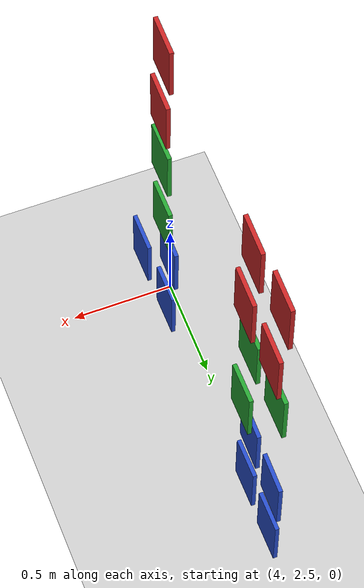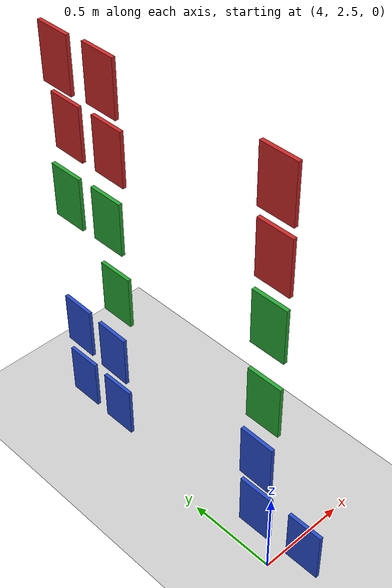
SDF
<sdf version="1.6">
 <world name="default">
  <model name="ground_plane">
   <static>1</static>
   <link name="link">
    <collision name="collision">
     <geometry><plane><normal>0 0 1</normal><size>100 100</size></plane></geometry>
     <surface><friction><ode><mu>100</mu><mu2>50</mu2></ode></friction></surface>
    </collision>
    <visual name="visual">
     <cast_shadows>0</cast_shadows>
     <geometry><plane><normal>0 0 1</normal><size>100 100</size></plane></geometry>
     <material>
      <script><uri>file://media/materials/scripts/gazebo.material</uri><name>Gazebo/Grey</name></script>
     </material>
    </visual>
   </link>
  </model>
  <model name="bluecube_0_clone_clone_9_clone_11_clone">
   <static>1</static>
   <link name="link">
    <pose>0 0 0.21 0 -0 0</pose>
    <collision name="collision"><geometry><box><size>0.2 0.02 0.3</size></box></geometry></collision>
    <visual name="visual">
     <geometry><box><size>0.2 0.02 0.3</size></box></geometry>
     <material>
      <script><uri>file://media/materials/scripts/gazebo.material</uri><name>Gazebo/Blue</name></script>
     </material>
    </visual>
   </link>
   <pose>4.08017 3.96905 0 0 -0 1.57146</pose>
  </model>
  <model name="bluecube_0_clone_clone_9_clone_11_clone_clone_0">
   <static>1</static>
   <link name="link">
    <pose>0 0 0.21 0 -0 0</pose>
    <collision name="collision"><geometry><box><size>0.2 0.02 0.3</size></box></geometry></collision>
    <visual name="visual">
     <geometry><box><size>0.2 0.02 0.3</size></box></geometry>
     <material>
      <script><uri>file://media/materials/scripts/gazebo.material</uri><name>Gazebo/Blue</name></script>
     </material>
    </visual>
   </link>
   <pose>4.08828 2.67294 0 0 -0 1.57146</pose>
  </model>
  <model name="bluecube_0_clone_clone_9_clone_11_clone_clone_1">
   <static>1</static>
   <link name="link">
    <pose>0 0 0.21 0 -0 0</pose>
    <collision name="collision"><geometry><box><size>0.2 0.02 0.3</size></box></geometry></collision>
    <visual name="visual">
     <geometry><box><size>0.2 0.02 0.3</size></box></geometry>
     <material>
      <script><uri>file://media/materials/scripts/gazebo.material</uri><name>Gazebo/Blue</name></script>
     </material>
    </visual>
   </link>
   <pose>4.0927 2.36032 0 0 -0 1.57146</pose>
  </model>
  <model name="bluecube_0_clone_clone_10_clone_clone_21_clone">
   <static>1</static>
   <link name="link">
    <pose>0 0 0.21 0 -0 0</pose>
    <collision name="collision"><geometry><box><size>0.2 0.02 0.3</size></box></geometry></collision>
    <visual name="visual">
     <geometry><box><size>0.2 0.02 0.3</size></box></geometry>
     <material>
      <script><uri>file://media/materials/scripts/gazebo.material</uri><name>Gazebo/Blue</name></script>
     </material>
    </visual>
   </link>
   <pose>4.07606 3.96812 0.38097 0 -0 1.5507</pose>
  </model>
  <model name="bluecube_0_clone_clone_9_clone_11_clone_clone_21">
   <static>1</static>
   <link name="link">
    <pose>0 0 0.21 0 -0 0</pose>
    <collision name="collision"><geometry><box><size>0.2 0.02 0.3</size></box></geometry></collision>
    <visual name="visual">
     <geometry><box><size>0.2 0.02 0.3</size></box></geometry>
     <material>
      <script><uri>file://media/materials/scripts/gazebo.material</uri><name>Gazebo/Blue</name></script>
     </material>
    </visual>
   </link>
   <pose>4.07424 3.68188 0 0 -0 1.57146</pose>
  </model>
  <model name="bluecube_0_clone_clone_10_clone_clone_21_clone_clone_0">
   <static>1</static>
   <link name="link">
    <pose>0 0 0.21 0 -0 0</pose>
    <collision name="collision"><geometry><box><size>0.2 0.02 0.3</size></box></geometry></collision>
    <visual name="visual">
     <geometry><box><size>0.2 0.02 0.3</size></box></geometry>
     <material>
      <script><uri>file://media/materials/scripts/gazebo.material</uri><name>Gazebo/Blue</name></script>
     </material>
    </visual>
   </link>
   <pose>4.06461 3.68448 0.38097 0 -0 1.5507</pose>
  </model>
  <model name="bluecube_0_clone_clone_10_clone_clone_21_clone_clone_1">
   <static>1</static>
   <link name="link">
    <pose>0 0 0.21 0 -0 0</pose>
    <collision name="collision"><geometry><box><size>0.2 0.02 0.3</size></box></geometry></collision>
    <visual name="visual">
     <geometry><box><size>0.2 0.02 0.3</size></box></geometry>
     <material>
      <script><uri>file://media/materials/scripts/gazebo.material</uri><name>Gazebo/Blue</name></script>
     </material>
    </visual>
   </link>
   <pose>4.07067 2.66646 0.38097 0 -0 1.5507</pose>
  </model>
  <model name="greencube_clone_clone_22_clone_clone">
   <static>1</static>
   <link name="link">
    <pose>0 0 0.21 0 -0 0</pose>
    <collision name="collision"><geometry><box><size>0.2 0.02 0.3</size></box></geometry></collision>
    <visual name="visual">
     <geometry><box><size>0.2 0.02 0.3</size></box></geometry>
     <material>
      <script><uri>file://media/materials/scripts/gazebo.material</uri><name>Gazebo/Green</name></script>
     </material>
    </visual>
   </link>
   <pose>4.11581 3.68432 0.751098 0 -0 1.56837</pose>
  </model>
  <model name="greencube_clone_clone_22_clone_clone_1">
   <static>1</static>
   <link name="link">
    <pose>0 0 0.21 0 -0 0</pose>
    <collision name="collision"><geometry><box><size>0.2 0.02 0.3</size></box></geometry></collision>
    <visual name="visual">
     <geometry><box><size>0.2 0.02 0.3</size></box></geometry>
     <material>
      <script><uri>file://media/materials/scripts/gazebo.material</uri><name>Gazebo/Green</name></script>
     </material>
    </visual>
   </link>
   <pose>4.10289 2.66656 0.751098 0 -0 1.56837</pose>
  </model>
  <model name="greencube_clone_clone_22_clone_clone_10_clone_clone_clone_11">
   <static>1</static>
   <link name="link">
    <pose>0 0 0.21 0 -0 0</pose>
    <collision name="collision"><geometry><box><size>0.2 0.02 0.3</size></box></geometry></collision>
    <visual name="visual">
     <geometry><box><size>0.2 0.02 0.3</size></box></geometry>
     <material>
      <script><uri>file://media/materials/scripts/gazebo.material</uri><name>Gazebo/Green</name></script>
     </material>
    </visual>
   </link>
   <pose>4.08711 3.97171 1.21098 0 -0 1.56837</pose>
  </model>
  <model name="greencube_clone_clone_22_clone_clone_10_clone_clone_clone_12">
   <static>1</static>
   <link name="link">
    <pose>0 0 0.21 0 -0 0</pose>
    <collision name="collision"><geometry><box><size>0.2 0.02 0.3</size></box></geometry></collision>
    <visual name="visual">
     <geometry><box><size>0.2 0.02 0.3</size></box></geometry>
     <material>
      <script><uri>file://media/materials/scripts/gazebo.material</uri><name>Gazebo/Green</name></script>
     </material>
    </visual>
   </link>
   <pose>4.09341 3.69107 1.21098 0 -0 1.56837</pose>
  </model>
  <model name="greencube_clone_clone_22_clone_clone_10_clone_clone_clone_13">
   <static>1</static>
   <link name="link">
    <pose>0 0 0.21 0 -0 0</pose>
    <collision name="collision"><geometry><box><size>0.2 0.02 0.3</size></box></geometry></collision>
    <visual name="visual">
     <geometry><box><size>0.2 0.02 0.3</size></box></geometry>
     <material>
      <script><uri>file://media/materials/scripts/gazebo.material</uri><name>Gazebo/Green</name></script>
     </material>
    </visual>
   </link>
   <pose>4.10701 2.66235 1.21098 0 -0 1.56837</pose>
  </model>
  <model name="redcube_clone_clone_22_clone_clone_11">
   <static>1</static>
   <link name="link">
    <pose>0 0 0.21 0 -0 0</pose>
    <collision name="collision"><geometry><box><size>0.2 0.02 0.3</size></box></geometry></collision>
    <visual name="visual">
     <geometry><box><size>0.2 0.02 0.3</size></box></geometry>
     <material>
      <script><uri>file://media/materials/scripts/gazebo.material</uri><name>Gazebo/Red</name></script>
     </material>
    </visual>
   </link>
   <pose>4.12436 3.97461 1.58534 0 -0 1.55372</pose>
  </model>
  <model name="redcube_clone_clone_22_clone_clone_12">
   <static>1</static>
   <link name="link">
    <pose>0 0 0.21 0 -0 0</pose>
    <collision name="collision"><geometry><box><size>0.2 0.02 0.3</size></box></geometry></collision>
    <visual name="visual">
     <geometry><box><size>0.2 0.02 0.3</size></box></geometry>
     <material>
      <script><uri>file://media/materials/scripts/gazebo.material</uri><name>Gazebo/Red</name></script>
     </material>
    </visual>
   </link>
   <pose>4.12538 3.6897 1.58534 0 -0 1.55372</pose>
  </model>
  <model name="redcube_clone_clone_22_clone_clone_13">
   <static>1</static>
   <link name="link">
    <pose>0 0 0.21 0 -0 0</pose>
    <collision name="collision"><geometry><box><size>0.2 0.02 0.3</size></box></geometry></collision>
    <visual name="visual">
     <geometry><box><size>0.2 0.02 0.3</size></box></geometry>
     <material>
      <script><uri>file://media/materials/scripts/gazebo.material</uri><name>Gazebo/Red</name></script>
     </material>
    </visual>
   </link>
   <pose>4.10913 2.65478 1.58534 0 -0 1.55372</pose>
  </model>
  <model name="redcube_clone_clone_22_clone_clone_22_clone_clone_4">
   <static>1</static>
   <link name="link">
    <pose>0 0 0.21 0 -0 0</pose>
    <collision name="collision"><geometry><box><size>0.2 0.02 0.3</size></box></geometry></collision>
    <visual name="visual">
     <geometry><box><size>0.2 0.02 0.3</size></box></geometry>
     <material>
      <script><uri>file://media/materials/scripts/gazebo.material</uri><name>Gazebo/Red</name></script>
     </material>
    </visual>
   </link>
   <pose>4.08812 2.63721 1.95914 0 -0 1.55372</pose>
  </model>
  <model name="redcube_clone_clone_22_clone_clone_22_clone_clone_8">
   <static>1</static>
   <link name="link">
    <pose>0 0 0.21 0 -0 0</pose>
    <collision name="collision"><geometry><box><size>0.2 0.02 0.3</size></box></geometry></collision>
    <visual name="visual">
     <geometry><box><size>0.2 0.02 0.3</size></box></geometry>
     <material>
      <script><uri>file://media/materials/scripts/gazebo.material</uri><name>Gazebo/Red</name></script>
     </material>
    </visual>
   </link>
   <pose>4.08543 3.96351 1.95914 0 -0 1.55372</pose>
  </model>
  <model name="redcube_clone_clone_22_clone_clone_22_clone_clone_9">
   <static>1</static>
   <link name="link">
    <pose>0 0 0.21 0 -0 0</pose>
    <collision name="collision"><geometry><box><size>0.2 0.02 0.3</size></box></geometry></collision>
    <visual name="visual">
     <geometry><box><size>0.2 0.02 0.3</size></box></geometry>
     <material>
      <script><uri>file://media/materials/scripts/gazebo.material</uri><name>Gazebo/Red</name></script>
     </material>
    </visual>
   </link>
   <pose>4.09692 3.67944 1.95914 0 -0 1.55372</pose>
  </model>
 </world>
</sdf>
